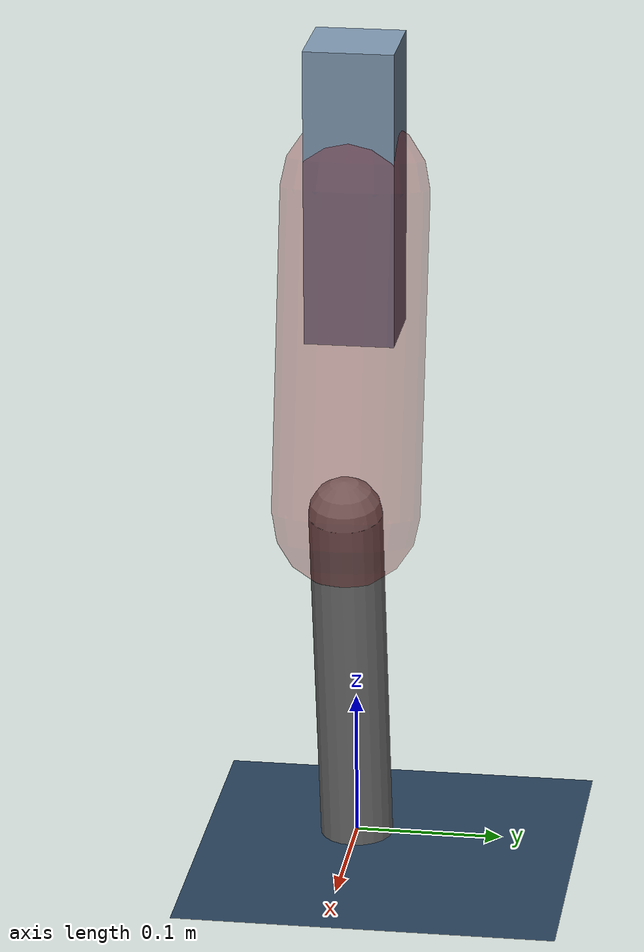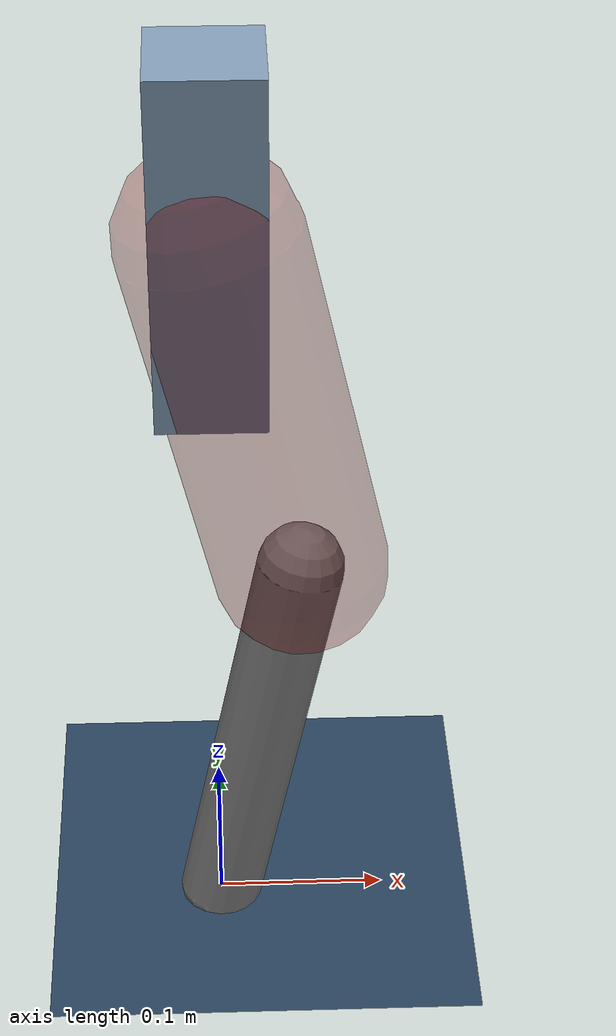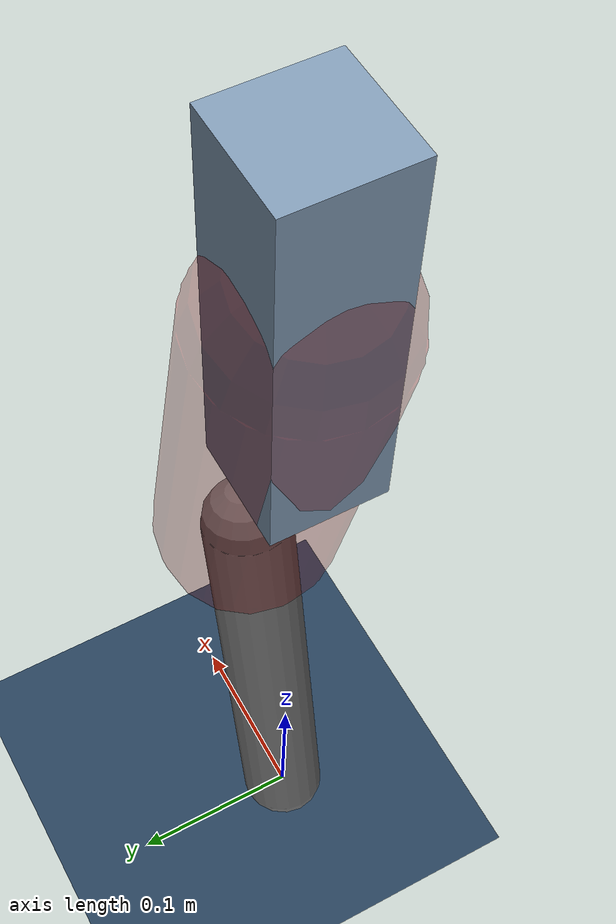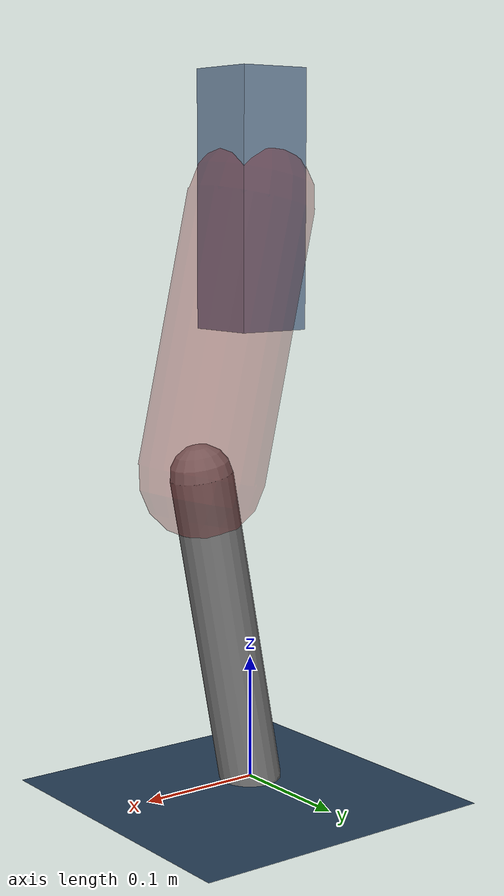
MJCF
<mujoco model="Hopper2D">
	<compiler inertiafromgeom="true" angle="radian" />
	<option timestep="0.001" integrator="implicit" cone="elliptic" solver="Newton" tolerance="1e-10" />

	<default>
		<geom contype="1" conaffinity="1" condim="3" friction="2 0.005 0.0001" solref="0.005 1" />
		<joint limited="true" damping="0.1" />
	</default>

	<asset>
		<texture name="skybox" type="skybox" builtin="gradient" rgb1=".4 .6 .8" rgb2="0 0 0" width="800" height="800" />
		<texture name="grid" type="2d" builtin="checker" rgb1=".1 .2 .3" rgb2=".2 .3 .4" width="300" height="300" mark="edge" markrgb=".2 .3 .4" />
		<material name="ground" texture="grid" texrepeat="1 1" texuniform="true" reflectance="0.1" />
		<material name="leg" rgba="0.5 0.6 0.7 1" />
	</asset>

	<worldbody>

		<geom name="floor" type="plane" size="5 5 0.25" material="ground" />

		<light directional="false" diffuse="0.8 0.8 0.8" specular="0.3 0.3 0.3" pos="0 0 2" dir="0 0 -1" />
		<light mode="targetbodycom" target="base" directional="false" diffuse="0.8 0.8 0.8" specular="0.3 0.3 0.3" pos="0 0 2" dir="0 0 -1" />

		<camera name="fixed" pos="0 -2 1" xyaxes="1 0 0 0 0 1" />
		<camera name="tracking" mode="trackcom" pos="0 -3 1" />

		<body name="root" pos="0 0 0.4651992359656483">
			<joint name="slide_x" type="slide" axis="1 0 0" range="-100 100" />
			<joint name="slide_z" type="slide" axis="0 0 1" range="0 10" />

			<body name="base" pos="0 0 0">
				<geom name="torso" type="box" size="0.03 0.03 0.1" mass="3.853" material="leg" />

				<body name="link1" pos="0 0 0" euler="0 1.3466429578757848 0">
					<joint type="hinge" axis="0 -1 0" pos="0 0 0" name="hinge1" limited="true" range="-3.14 3.14" stiffness="0" damping="0.1" />
					<geom name="thigh" type="capsule" fromto="0 0 0 0.217302000182121 0 0" size="0.05" rgba="0.5 0 0 0.3" mass="0.7728550004553025" />

					<body name="link2" pos="0.217302000182121 0 0" euler="0 0.4125580627127604 0">
						<joint type="hinge" axis="0 -1 0" pos="0 0 0" name="hinge2" limited="true" range="-3.14 3.14" stiffness="0" damping="0.1" />
						<geom name="shank" type="capsule" fromto="0 0 0 0.25789723578352725 0 0" size="0.025" mass="0.4490177886268218" />

					</body>
				</body>
			</body>
		</body>
	</worldbody>

	<actuator>
		<motor name="torque1" joint="hinge1" ctrlrange="-180.70816751157338 180.70816751157338" ctrllimited="true" gear="1" />
		<motor name="torque2" joint="hinge2" ctrlrange="-118.19380873926967 118.19380873926967" ctrllimited="true" gear="1" />
	</actuator>
</mujoco>
